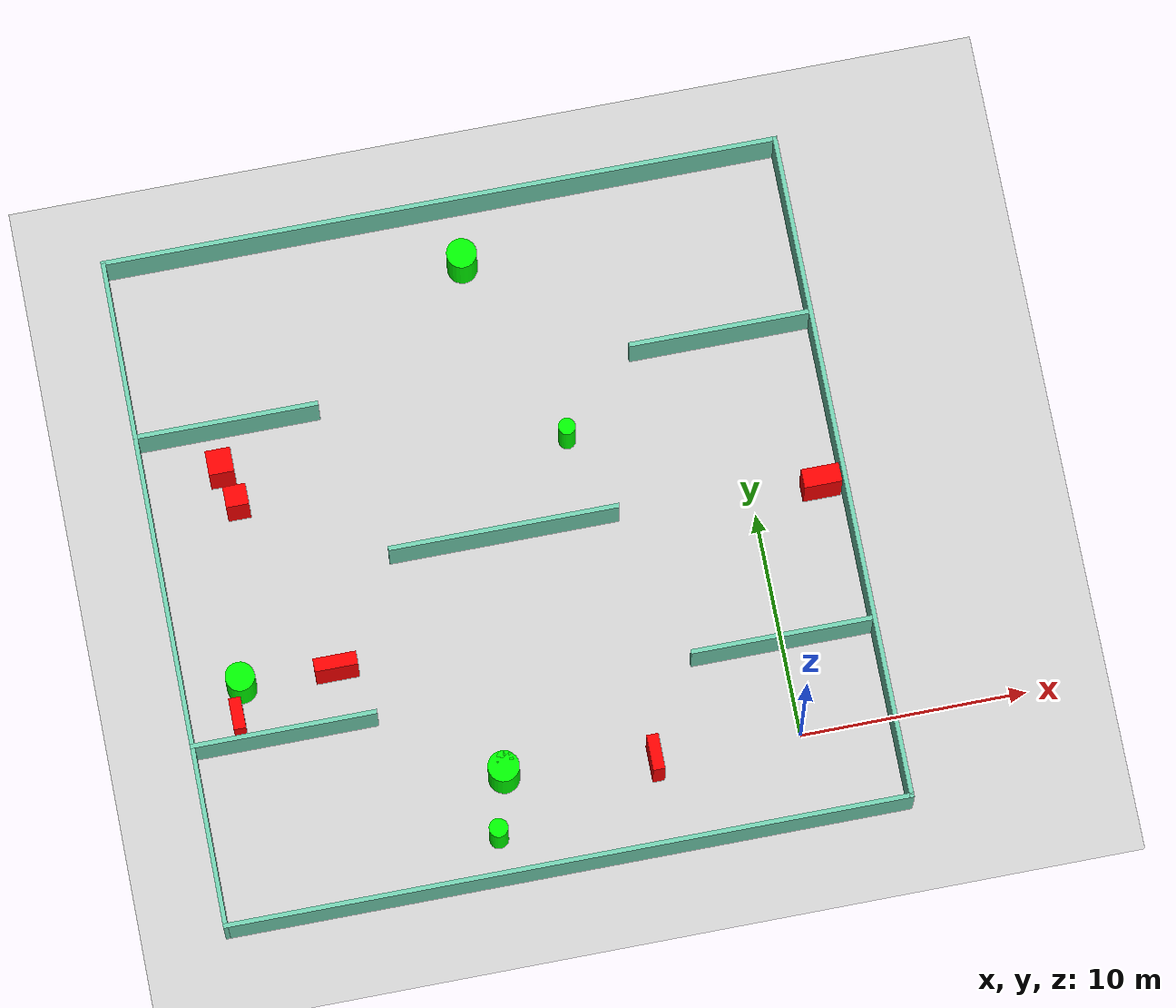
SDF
<sdf version="1.7">
 <world name="default">
  <light name="sun" type="directional">
   <pose>0 0 10 0 -0 0</pose>
   <diffuse>0.8 0.8 0.8 1</diffuse>
   <specular>0.2 0.2 0.2 1</specular>
   <attenuation>
    <range>1000</range>
    <constant>0.9</constant>
    <linear>0.01</linear>
    <quadratic>0.001</quadratic>
   </attenuation>
   <direction>-0.5 0.1 -0.9</direction>
   <spot><inner_angle>0</inner_angle><outer_angle>0</outer_angle><falloff>0</falloff></spot>
  </light>
  <model name="ground_plane">
   <static>1</static>
   <link name="link">
    <collision name="collision">
     <geometry><plane><normal>0 0 1</normal><size>100 100</size></plane></geometry>
     <surface>
      <contact><collide_bitmask>65535</collide_bitmask></contact>
      <friction><ode><mu>100</mu><mu2>50</mu2></ode></friction>
     </surface>
    </collision>
    <visual name="visual">
     <cast_shadows>0</cast_shadows>
     <geometry><plane><normal>0 0 1</normal><size>100 100</size></plane></geometry>
     <material>
      <script><uri>file://media/materials/scripts/gazebo.material</uri><name>Gazebo/Grey</name></script>
     </material>
    </visual>
   </link>
  </model>
  <gravity>0 0 -9.8</gravity>
  <magnetic_field>6e-06 2.3e-05 -4.2e-05</magnetic_field>
  <atmosphere type="adiabatic"/>
  <physics type="ode">
   <max_step_size>0.001</max_step_size>
   <real_time_factor>1</real_time_factor>
   <real_time_update_rate>1000</real_time_update_rate>
  </physics>
  <scene><ambient>0.4 0.4 0.4 1</ambient><background>0.7 0.7 0.7 1</background><shadows>1</shadows></scene>
  <spherical_coordinates>
   <surface_model>EARTH_WGS84</surface_model>
   <latitude_deg>0</latitude_deg>
   <longitude_deg>0</longitude_deg>
   <elevation>0</elevation>
   <heading_deg>0</heading_deg>
  </spherical_coordinates>
  <model name="my_base_walls">
   <link name="Wall_10">
    <collision name="Wall_10_Collision">
     <geometry><box><size>8.2 0.2 2.5</size></box></geometry>
     <pose>0 0 1.25 0 -0 0</pose>
    </collision>
    <visual name="Wall_10_Visual">
     <pose>0 0 1.25 0 -0 0</pose>
     <geometry><box><size>8.2 0.2 2.5</size></box></geometry>
     <material>
      <script><uri>file://media/materials/scripts/gazebo.material</uri><name>Gazebo/Grey</name></script>
      <ambient>0.435294 0.796078 0.67451 1</ambient>
     </material>
     <meta><layer>0</layer></meta>
    </visual>
    <pose>-11 -7 0 0 -0 0</pose>
   </link>
   <link name="Wall_12">
    <collision name="Wall_12_Collision">
     <geometry><box><size>8.2 0.2 2.5</size></box></geometry>
     <pose>0 0 1.25 0 -0 0</pose>
    </collision>
    <visual name="Wall_12_Visual">
     <pose>0 0 1.25 0 -0 0</pose>
     <geometry><box><size>8.2 0.2 2.5</size></box></geometry>
     <material>
      <script><uri>file://media/materials/scripts/gazebo.material</uri><name>Gazebo/Grey</name></script>
      <ambient>0.435294 0.796078 0.67451 1</ambient>
     </material>
     <meta><layer>0</layer></meta>
    </visual>
    <pose>-11 7 0 0 -0 0</pose>
   </link>
   <link name="Wall_14">
    <collision name="Wall_14_Collision">
     <geometry><box><size>8.2 0.2 2.5</size></box></geometry>
     <pose>0 0 1.25 0 -0 0</pose>
    </collision>
    <visual name="Wall_14_Visual">
     <pose>0 0 1.25 0 -0 0</pose>
     <geometry><box><size>8.2 0.2 2.5</size></box></geometry>
     <material>
      <script><uri>file://media/materials/scripts/gazebo.material</uri><name>Gazebo/Grey</name></script>
      <ambient>0.435294 0.796078 0.67451 1</ambient>
     </material>
     <meta><layer>0</layer></meta>
    </visual>
    <pose>11 7 0 0 -0 3.14159</pose>
   </link>
   <link name="Wall_16">
    <collision name="Wall_16_Collision">
     <geometry><box><size>10.2 0.2 2.5</size></box></geometry>
     <pose>0 0 1.25 0 -0 0</pose>
    </collision>
    <visual name="Wall_16_Visual">
     <pose>0 0 1.25 0 -0 0</pose>
     <geometry><box><size>10.2 0.2 2.5</size></box></geometry>
     <material>
      <script><uri>file://media/materials/scripts/gazebo.material</uri><name>Gazebo/Grey</name></script>
      <ambient>0.435294 0.796078 0.67451 1</ambient>
     </material>
     <meta><layer>0</layer></meta>
    </visual>
    <pose>0 0 0 0 -0 3.14159</pose>
   </link>
   <link name="Wall_2">
    <collision name="Wall_2_Collision">
     <geometry><box><size>30.2 0.2 2.5</size></box></geometry>
     <pose>0 0 1.25 0 -0 0</pose>
    </collision>
    <visual name="Wall_2_Visual">
     <pose>0 0 1.25 0 -0 0</pose>
     <geometry><box><size>30.2 0.2 2.5</size></box></geometry>
     <material>
      <script><uri>file://media/materials/scripts/gazebo.material</uri><name>Gazebo/Grey</name></script>
      <ambient>0.435294 0.796078 0.67451 1</ambient>
     </material>
     <meta><layer>0</layer></meta>
    </visual>
    <pose>0 -15 0 0 -0 3.14159</pose>
   </link>
   <link name="Wall_3">
    <collision name="Wall_3_Collision">
     <geometry><box><size>30.2 0.2 2.5</size></box></geometry>
     <pose>0 0 1.25 0 -0 0</pose>
    </collision>
    <visual name="Wall_3_Visual">
     <pose>0 0 1.25 0 -0 0</pose>
     <geometry><box><size>30.2 0.2 2.5</size></box></geometry>
     <material>
      <script><uri>file://media/materials/scripts/gazebo.material</uri><name>Gazebo/Grey</name></script>
      <ambient>0.435294 0.796078 0.67451 1</ambient>
     </material>
     <meta><layer>0</layer></meta>
    </visual>
    <pose>-15 0 0 0 -0 1.5708</pose>
   </link>
   <link name="Wall_4">
    <collision name="Wall_4_Collision">
     <geometry><box><size>30.2 0.2 2.5</size></box></geometry>
     <pose>0 0 1.25 0 -0 0</pose>
    </collision>
    <visual name="Wall_4_Visual">
     <pose>0 0 1.25 0 -0 0</pose>
     <geometry><box><size>30.2 0.2 2.5</size></box></geometry>
     <material>
      <script><uri>file://media/materials/scripts/gazebo.material</uri><name>Gazebo/Grey</name></script>
      <ambient>0.435294 0.796078 0.67451 1</ambient>
     </material>
     <meta><layer>0</layer></meta>
    </visual>
    <pose>0 15 0 0 -0 0</pose>
   </link>
   <link name="Wall_6">
    <collision name="Wall_6_Collision">
     <geometry><box><size>30.2 0.2 2.5</size></box></geometry>
     <pose>0 0 1.25 0 -0 0</pose>
    </collision>
    <visual name="Wall_6_Visual">
     <pose>0 0 1.25 0 -0 0</pose>
     <geometry><box><size>30.2 0.2 2.5</size></box></geometry>
     <material>
      <script><uri>file://media/materials/scripts/gazebo.material</uri><name>Gazebo/Grey</name></script>
      <ambient>0.435294 0.796078 0.67451 1</ambient>
     </material>
     <meta><layer>0</layer></meta>
    </visual>
    <pose>15 0 0 0 -0 1.5708</pose>
   </link>
   <link name="Wall_8">
    <collision name="Wall_8_Collision">
     <geometry><box><size>8.2 0.2 2.5</size></box></geometry>
     <pose>0 0 1.25 0 -0 0</pose>
    </collision>
    <visual name="Wall_8_Visual">
     <pose>0 0 1.25 0 -0 0</pose>
     <geometry><box><size>8.2 0.2 2.5</size></box></geometry>
     <material>
      <script><uri>file://media/materials/scripts/gazebo.material</uri><name>Gazebo/Grey</name></script>
      <ambient>0.435294 0.796078 0.67451 1</ambient>
     </material>
     <meta><layer>0</layer></meta>
    </visual>
    <pose>11 -7 0 0 -0 3.14159</pose>
   </link>
   <static>1</static>
   <pose>-11 11 0 0 -0 0</pose>
  </model>
  <model name="cylinder1">
   <static>1</static>
   <link name="link">
    <inertial>
     <mass>1</mass>
     <inertia><ixx>0.5</ixx><ixy>0</ixy><ixz>0</ixz><iyy>0.5</iyy><iyz>0</iyz><izz>1</izz></inertia>
    </inertial>
    <collision name="collision">
     <geometry><cylinder><radius>0.3805278647645871</radius><length>2.5</length></cylinder></geometry>
    </collision>
    <visual name="visual">
     <geometry><cylinder><radius>0.3805278647645871</radius><length>2.5</length></cylinder></geometry>
     <material>
      <ambient>0 1 0 1</ambient>
      <diffuse>0 1 0 1</diffuse>
      <specular>0.1 0.1 0.1 1</specular>
      <emissive>0 0 0 0</emissive>
     </material>
    </visual>
   </link>
   <pose>-7.452483128151954 14.89936235988721 1.25 0 0 0</pose>
  </model>
  <model name="cylinder2">
   <static>1</static>
   <link name="link">
    <inertial>
     <mass>1</mass>
     <inertia><ixx>0.5</ixx><ixy>0</ixy><ixz>0</ixz><iyy>0.5</iyy><iyz>0</iyz><izz>1</izz></inertia>
    </inertial>
    <collision name="collision">
     <geometry><cylinder><radius>0.3755075441214224</radius><length>2.5</length></cylinder></geometry>
    </collision>
    <visual name="visual">
     <geometry><cylinder><radius>0.3755075441214224</radius><length>2.5</length></cylinder></geometry>
     <material>
      <ambient>0 1 0 1</ambient>
      <diffuse>0 1 0 1</diffuse>
      <specular>0.1 0.1 0.1 1</specular>
      <emissive>0 0 0 0</emissive>
     </material>
    </visual>
   </link>
   <pose>-12.885382069163287 0.9053799274417722 1.25 0 0 0</pose>
  </model>
  <model name="cylinder3">
   <static>1</static>
   <link name="link">
    <inertial>
     <mass>1</mass>
     <inertia><ixx>0.5</ixx><ixy>0</ixy><ixz>0</ixz><iyy>0.5</iyy><iyz>0</iyz><izz>1</izz></inertia>
    </inertial>
    <collision name="collision">
     <geometry><cylinder><radius>0.4218153056066678</radius><length>2.5</length></cylinder></geometry>
    </collision>
    <visual name="visual">
     <geometry><cylinder><radius>0.4218153056066678</radius><length>2.5</length></cylinder></geometry>
     <material>
      <ambient>0 1 0 1</ambient>
      <diffuse>0 1 0 1</diffuse>
      <specular>0.1 0.1 0.1 1</specular>
      <emissive>0 0 0 0</emissive>
     </material>
    </visual>
   </link>
   <pose>-13.712031927412845 -2.0281421459902815 1.25 0 0 0</pose>
  </model>
  <model name="cylinder4">
   <static>1</static>
   <link name="link">
    <inertial>
     <mass>1</mass>
     <inertia><ixx>0.5</ixx><ixy>0</ixy><ixz>0</ixz><iyy>0.5</iyy><iyz>0</iyz><izz>1</izz></inertia>
    </inertial>
    <collision name="collision">
     <geometry><cylinder><radius>0.6520988027555503</radius><length>2.5</length></cylinder></geometry>
    </collision>
    <visual name="visual">
     <geometry><cylinder><radius>0.6520988027555503</radius><length>2.5</length></cylinder></geometry>
     <material>
      <ambient>0 1 0 1</ambient>
      <diffuse>0 1 0 1</diffuse>
      <specular>0.1 0.1 0.1 1</specular>
      <emissive>0 0 0 0</emissive>
     </material>
    </visual>
   </link>
   <pose>-23.42801587078396 6.631644042201495 1.25 0 0 0</pose>
  </model>
  <model name="cylinder5">
   <static>1</static>
   <link name="link">
    <inertial>
     <mass>1</mass>
     <inertia><ixx>0.5</ixx><ixy>0</ixy><ixz>0</ixz><iyy>0.5</iyy><iyz>0</iyz><izz>1</izz></inertia>
    </inertial>
    <collision name="collision">
     <geometry><cylinder><radius>0.6735764848434016</radius><length>2.5</length></cylinder></geometry>
    </collision>
    <visual name="visual">
     <geometry><cylinder><radius>0.6735764848434016</radius><length>2.5</length></cylinder></geometry>
     <material>
      <ambient>0 1 0 1</ambient>
      <diffuse>0 1 0 1</diffuse>
      <specular>0.1 0.1 0.1 1</specular>
      <emissive>0 0 0 0</emissive>
     </material>
    </visual>
   </link>
   <pose>-10.503162397301647 23.471092596408894 1.25 0 0 0</pose>
  </model>
  <model name="cylinder6">
   <static>1</static>
   <link name="link">
    <inertial>
     <mass>1</mass>
     <inertia><ixx>0.5</ixx><ixy>0</ixy><ixz>0</ixz><iyy>0.5</iyy><iyz>0</iyz><izz>1</izz></inertia>
    </inertial>
    <collision name="collision">
     <geometry><cylinder><radius>0.6920587431757049</radius><length>2.5</length></cylinder></geometry>
    </collision>
    <visual name="visual">
     <geometry><cylinder><radius>0.6920587431757049</radius><length>2.5</length></cylinder></geometry>
     <material>
      <ambient>0 1 0 1</ambient>
      <diffuse>0 1 0 1</diffuse>
      <specular>0.1 0.1 0.1 1</specular>
      <emissive>0 0 0 0</emissive>
     </material>
    </visual>
   </link>
   <pose>-12.993847622792888 0.5872492990592995 1.25 0 0 0</pose>
  </model>
  <model name="box1">
   <static>1</static>
   <link name="link">
    <inertial>
     <mass>1</mass>
     <inertia><ixx>0.083</ixx><ixy>0</ixy><ixz>0</ixz><iyy>0.083</iyy><iyz>0</iyz><izz>0.083</izz></inertia>
    </inertial>
    <collision name="collision">
     <geometry><box><size>1.6792329084924336 0.8379929315251379 2.5</size></box></geometry>
    </collision>
    <visual name="visual">
     <geometry><box><size>1.6792329084924336 0.8379929315251379 2.5</size></box></geometry>
     <material>
      <ambient>1 0 0 1</ambient>
      <diffuse>1 0 0 1</diffuse>
      <specular>0.1 0.1 0.1 1</specular>
      <emissive>0 0 0 0</emissive>
     </material>
    </visual>
    <sensor name="my_contact" type="contact">
     <contact><collision>box_collision</collision><topic>__default_topic__</topic></contact>
    </sensor>
   </link>
   <pose>3.002254698549173 10.639404406801042 1.25 0 0 0</pose>
  </model>
  <model name="box2">
   <static>1</static>
   <link name="link">
    <inertial>
     <mass>1</mass>
     <inertia><ixx>0.083</ixx><ixy>0</ixy><ixz>0</ixz><iyy>0.083</iyy><iyz>0</iyz><izz>0.083</izz></inertia>
    </inertial>
    <collision name="collision">
     <geometry><box><size>0.5377597838939602 1.393311235256103 2.5</size></box></geometry>
    </collision>
    <visual name="visual">
     <geometry><box><size>0.5377597838939602 1.393311235256103 2.5</size></box></geometry>
     <material>
      <ambient>1 0 0 1</ambient>
      <diffuse>1 0 0 1</diffuse>
      <specular>0.1 0.1 0.1 1</specular>
      <emissive>0 0 0 0</emissive>
     </material>
    </visual>
    <sensor name="my_contact" type="contact">
     <contact><collision>box_collision</collision><topic>__default_topic__</topic></contact>
    </sensor>
   </link>
   <pose>-23.835093191405864 5.059300147841224 1.25 0 0 0</pose>
  </model>
  <model name="box3">
   <static>1</static>
   <link name="link">
    <inertial>
     <mass>1</mass>
     <inertia><ixx>0.083</ixx><ixy>0</ixy><ixz>0</ixz><iyy>0.083</iyy><iyz>0</iyz><izz>0.083</izz></inertia>
    </inertial>
    <collision name="collision">
     <geometry><box><size>1.0113001990541943 0.9372503893692882 2.5</size></box></geometry>
    </collision>
    <visual name="visual">
     <geometry><box><size>1.0113001990541943 0.9372503893692882 2.5</size></box></geometry>
     <material>
      <ambient>1 0 0 1</ambient>
      <diffuse>1 0 0 1</diffuse>
      <specular>0.1 0.1 0.1 1</specular>
      <emissive>0 0 0 0</emissive>
     </material>
    </visual>
    <sensor name="my_contact" type="contact">
     <contact><collision>box_collision</collision><topic>__default_topic__</topic></contact>
    </sensor>
   </link>
   <pose>-22.165854094704265 14.593902201604092 1.25 0 0 0</pose>
  </model>
  <model name="box4">
   <static>1</static>
   <link name="link">
    <inertial>
     <mass>1</mass>
     <inertia><ixx>0.083</ixx><ixy>0</ixy><ixz>0</ixz><iyy>0.083</iyy><iyz>0</iyz><izz>0.083</izz></inertia>
    </inertial>
    <collision name="collision">
     <geometry><box><size>1.119958876172491 1.094605092852534 2.5</size></box></geometry>
    </collision>
    <visual name="visual">
     <geometry><box><size>1.119958876172491 1.094605092852534 2.5</size></box></geometry>
     <material>
      <ambient>1 0 0 1</ambient>
      <diffuse>1 0 0 1</diffuse>
      <specular>0.1 0.1 0.1 1</specular>
      <emissive>0 0 0 0</emissive>
     </material>
    </visual>
    <sensor name="my_contact" type="contact">
     <contact><collision>box_collision</collision><topic>__default_topic__</topic></contact>
    </sensor>
   </link>
   <pose>-22.585368116439074 16.238941621255123 1.25 0 0 0</pose>
  </model>
  <model name="box5">
   <static>1</static>
   <link name="link">
    <inertial>
     <mass>1</mass>
     <inertia><ixx>0.083</ixx><ixy>0</ixy><ixz>0</ixz><iyy>0.083</iyy><iyz>0</iyz><izz>0.083</izz></inertia>
    </inertial>
    <collision name="collision">
     <geometry><box><size>0.533848952425328 1.5754604627919613 2.5</size></box></geometry>
    </collision>
    <visual name="visual">
     <geometry><box><size>0.533848952425328 1.5754604627919613 2.5</size></box></geometry>
     <material>
      <ambient>1 0 0 1</ambient>
      <diffuse>1 0 0 1</diffuse>
      <specular>0.1 0.1 0.1 1</specular>
      <emissive>0 0 0 0</emissive>
     </material>
    </visual>
    <sensor name="my_contact" type="contact">
     <contact><collision>box_collision</collision><topic>__default_topic__</topic></contact>
    </sensor>
   </link>
   <pose>-6.439720398961374 -0.03966271115667741 1.25 0 0 0</pose>
  </model>
  <model name="box6">
   <static>1</static>
   <link name="link">
    <inertial>
     <mass>1</mass>
     <inertia><ixx>0.083</ixx><ixy>0</ixy><ixz>0</ixz><iyy>0.083</iyy><iyz>0</iyz><izz>0.083</izz></inertia>
    </inertial>
    <collision name="collision">
     <geometry><box><size>1.900658184283412 0.5891053637413822 2.5</size></box></geometry>
    </collision>
    <visual name="visual">
     <geometry><box><size>1.900658184283412 0.5891053637413822 2.5</size></box></geometry>
     <material>
      <ambient>1 0 0 1</ambient>
      <diffuse>1 0 0 1</diffuse>
      <specular>0.1 0.1 0.1 1</specular>
      <emissive>0 0 0 0</emissive>
     </material>
    </visual>
    <sensor name="my_contact" type="contact">
     <contact><collision>box_collision</collision><topic>__default_topic__</topic></contact>
    </sensor>
   </link>
   <pose>-19.26198318285962 6.506005138587042 1.25 0 0 0</pose>
  </model>
 </world>
</sdf>
